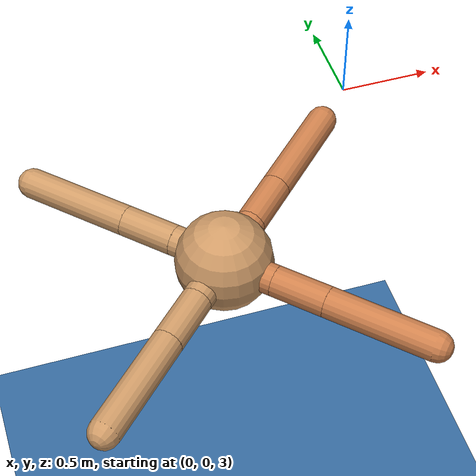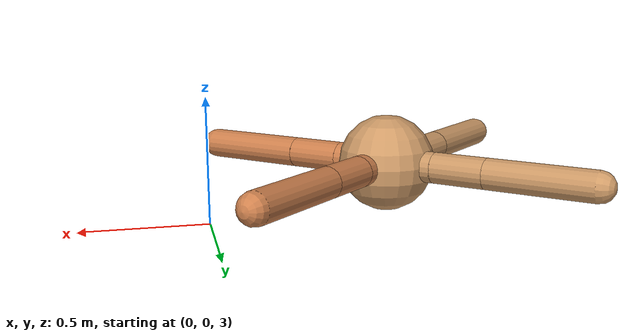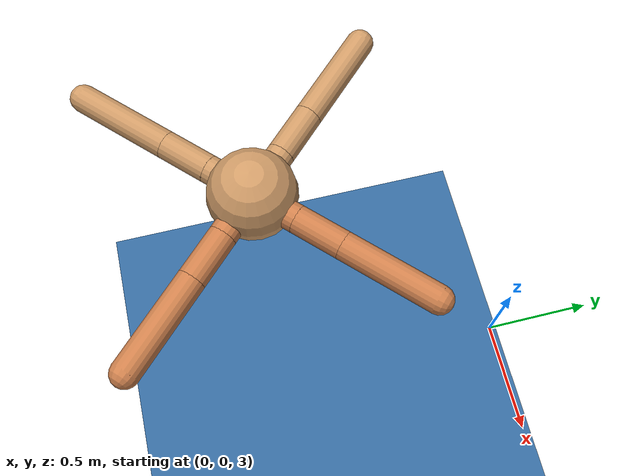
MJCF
<mujoco model="ant">
  <compiler angle="degree" coordinate="local" inertiafromgeom="true"/>
  <option integrator="RK4" timestep="0.01"/>
  <default>
    <joint armature="1" damping="1" limited="true"/>
    <geom conaffinity="0" condim="3" density="5.0" friction="1.5 0.1 0.1" margin="0.01" rgba="0.8 0.6 0.4 1"/>
  </default>

  <worldbody>
    <geom conaffinity="1" type="plane" size="10 10 0.1" rgba=".2 .4 .6 1"/>
  </worldbody>

  <worldbody>
    <body name="torso" pos="-1 -1 3">
      <freejoint name="jtorso_free"/>
      <geom name="torso_geom" pos="0 0 0" size="0.25" type="sphere"/>
      <body name="front_left_leg" pos="0 0 0">
        <geom fromto="0.0 0.0 0.0 0.2 0.2 0.0" name="aux_1_geom" size="0.08" type="capsule" rgba=".8 .5 .3 1"/>
        <body name="aux_1" pos="0.2 0.2 0">
          <joint axis="0 0 1" name="hip_1" pos="0.0 0.0 0.0" range="-40 40" type="hinge"/>
          <geom fromto="0.0 0.0 0.0 0.2 0.2 0.0" name="left_leg_geom" size="0.08" type="capsule" rgba=".8 .5 .3 1"/>
          <body pos="0.2 0.2 0" name="front_left_foot">
            <joint axis="-1 1 0" name="ankle_1" pos="0.0 0.0 0.0" range="30 100" type="hinge"/>
            <geom fromto="0.0 0.0 0.0 0.4 0.4 0.0" name="left_ankle_geom" size="0.08" type="capsule" rgba=".8 .5 .3 1"/>
          </body>
        </body>
      </body>
      <body name="front_right_leg" pos="0 0 0">
        <geom fromto="0.0 0.0 0.0 -0.2 0.2 0.0" name="aux_2_geom" size="0.08" type="capsule"/>
        <body name="aux_2" pos="-0.2 0.2 0">
          <joint axis="0 0 1" name="hip_2" pos="0.0 0.0 0.0" range="-40 40" type="hinge"/>
          <geom fromto="0.0 0.0 0.0 -0.2 0.2 0.0" name="right_leg_geom" size="0.08" type="capsule"/>
          <body pos="-0.2 0.2 0" name="front_right_foot">
            <joint axis="1 1 0" name="ankle_2" pos="0.0 0.0 0.0" range="-100 -30" type="hinge"/>
            <geom fromto="0.0 0.0 0.0 -0.4 0.4 0.0" name="right_ankle_geom" size="0.08" type="capsule"/>
          </body>
        </body>
      </body>
      <body name="left_back_leg" pos="0 0 0">
        <geom fromto="0.0 0.0 0.0 -0.2 -0.2 0.0" name="aux_3_geom" size="0.08" type="capsule"/>
        <body name="aux_3" pos="-0.2 -0.2 0">
          <joint axis="0 0 1" name="hip_3" pos="0.0 0.0 0.0" range="-40 40" type="hinge"/>
          <geom fromto="0.0 0.0 0.0 -0.2 -0.2 0.0" name="back_leg_geom" size="0.08" type="capsule"/>
          <body pos="-0.2 -0.2 0" name="left_back_foot">
            <joint axis="-1 1 0" name="ankle_3" pos="0.0 0.0 0.0" range="-100 -30" type="hinge"/>
            <geom fromto="0.0 0.0 0.0 -0.4 -0.4 0.0" name="third_ankle_geom" size="0.08" type="capsule"/>
          </body>
        </body>
      </body>
      <body name="right_back_leg" pos="0 0 0">
        <geom fromto="0.0 0.0 0.0 0.2 -0.2 0.0" name="aux_4_geom" size="0.08" type="capsule" rgba=".8 .5 .3 1"/>
        <body name="aux_4" pos="0.2 -0.2 0">
          <joint axis="0 0 1" name="hip_4" pos="0.0 0.0 0.0" range="-40 40" type="hinge"/>
          <geom fromto="0.0 0.0 0.0 0.2 -0.2 0.0" name="rightback_leg_geom" size="0.08" type="capsule" rgba=".8 .5 .3 1"/>
          <body pos="0.2 -0.2 0" name="right_back_foot">
            <joint axis="1 1 0" name="ankle_4" pos="0.0 0.0 0.0" range="30 100" type="hinge"/>
            <geom fromto="0.0 0.0 0.0 0.4 -0.4 0.0" name="fourth_ankle_geom" size="0.08" type="capsule" rgba=".8 .5 .3 1"/>
          </body>
        </body>
      </body>
    </body>
  </worldbody>
  <actuator>
    <velocity name="vel_hip_4"      ctrllimited="true" ctrlrange="-1.0 1.0" joint="hip_4"   kv="25"/>
    <velocity name="vel_ankle_4"    ctrllimited="true" ctrlrange="-1.0 1.0" joint="ankle_4" kv="25"/>
    <velocity name="vel_hip_1"      ctrllimited="true" ctrlrange="-1.0 1.0" joint="hip_1"   kv="25"/>
    <velocity name="vel_ankle_1"    ctrllimited="true" ctrlrange="-1.0 1.0" joint="ankle_1" kv="25"/>
    <velocity name="vel_hip_2"      ctrllimited="true" ctrlrange="-1.0 1.0" joint="hip_2"   kv="25"/>
    <velocity name="vel_ankle_2"    ctrllimited="true" ctrlrange="-1.0 1.0" joint="ankle_2" kv="25"/>
    <velocity name="vel_hip_3"      ctrllimited="true" ctrlrange="-1.0 1.0" joint="hip_3"   kv="25"/>
    <velocity name="vel_ankle_3"    ctrllimited="true" ctrlrange="-1.0 1.0" joint="ankle_3" kv="25"/>

    <position name="pos_hip_4"      ctrllimited="true" ctrlrange="-2.0 2.0" joint="hip_4"   kp="100"/>
    <position name="pos_ankle_4"    ctrllimited="true" ctrlrange="-2.0 2.0" joint="ankle_4" kp="100"/>
    <position name="pos_hip_1"      ctrllimited="true" ctrlrange="-2.0 2.0" joint="hip_1"   kp="100"/>
    <position name="pos_ankle_1"    ctrllimited="true" ctrlrange="-2.0 2.0" joint="ankle_1" kp="100"/>
    <position name="pos_hip_2"      ctrllimited="true" ctrlrange="-2.0 2.0" joint="hip_2"   kp="100"/>
    <position name="pos_ankle_2"    ctrllimited="true" ctrlrange="-2.0 2.0" joint="ankle_2" kp="100"/>
    <position name="pos_hip_3"      ctrllimited="true" ctrlrange="-2.0 2.0" joint="hip_3"   kp="100"/>
    <position name="pos_ankle_3"    ctrllimited="true" ctrlrange="-2.0 2.0" joint="ankle_3" kp="100"/>
  </actuator>
</mujoco>
